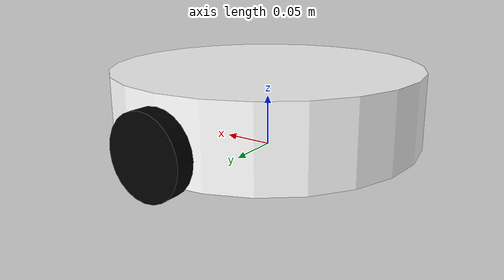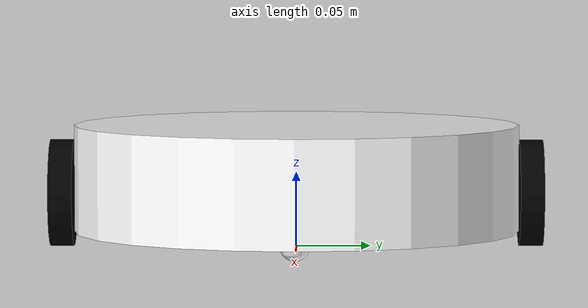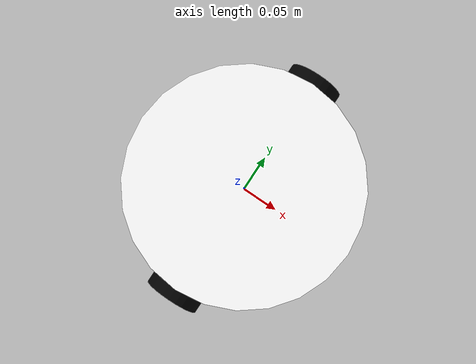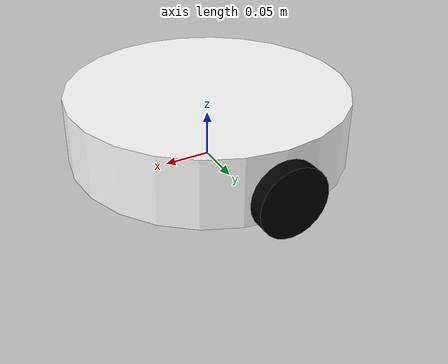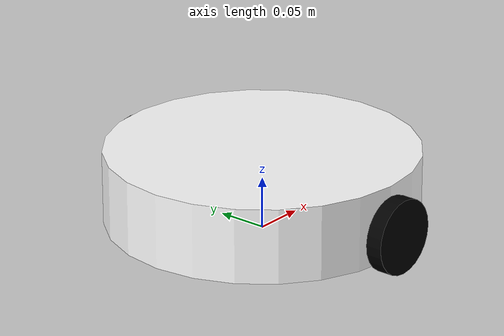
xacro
<robot name="diff">

    <link name="base_link"/>

    <link name="body_link">
      <visual>
        <geometry>
          <cylinder radius="0.15" length="0.072"/>
        </geometry>
        <origin xyz="0 0 0" rpy="0 0 0"/>
        <material name="white">
          <color rgba="1.0 1.0 1.0 1.0"/>
        </material>
      </visual>
      <collision>
        <geometry>
          <cylinder radius="0.15" length="0.072"/>
        </geometry>
        <origin xyz="0 0 0" rpy="0 0 0"/>
      </collision>
      <inertial>
          <origin xyz="0 0 0" rpy="0 0 0" />
          <mass value="3.0" />
          <inertia ixx="0.018171"
              ixy="0"  ixz="0"
              iyx="0"  iyy="0.018171"
              iyz="0"
              izx="0"  izy="0"  izz="0.03375" />
      </inertial>
    </link>

    <gazebo reference="body_link">
      <material>Gazebo/White</material>
    </gazebo>

    <link name="ball_link_front">
      <visual>
        <geometry>
          <sphere radius="0.01"/>
        </geometry>
        <origin xyz="0 0 0" rpy="0 0 0"/>
        <material name="white">
          <color rgba="1.0 1.0 1.0 1.0"/>
        </material>
      </visual>
      <collision>
        <geometry>
          <sphere radius="0.01"/>
        </geometry>
        <origin xyz="0 0 0" rpy="0 0 0"/>
      </collision>
      <inertial>
          <origin xyz="0 0 0" rpy="0 0 0" />
          <mass value="0.05" />
          <inertia ixx="0.000002"
              ixy="0"  ixz="0"
              iyx="0"  iyy="0.000002"
              iyz="0"
              izx="0"  izy="0"  izz="0.000002" />
      </inertial>
    </link>

    <gazebo reference="ball_link_front">
      <material>Gazebo/White</material>
      <mu1 value="0.1" />
      <mu2 value="0.1" />
    </gazebo>

    <link name="ball_link_back">
      <visual>
        <geometry>
          <sphere radius="0.01"/>
        </geometry>
        <origin xyz="0 0 0" rpy="0 0 0"/>
        <material name="white">
          <color rgba="1.0 1.0 1.0 1.0"/>
        </material>
      </visual>
      <collision>
        <geometry>
          <sphere radius="0.01"/>
        </geometry>
        <origin xyz="0 0 0" rpy="0 0 0"/>
      </collision>
      <inertial>
          <origin xyz="0 0 0" rpy="0 0 0" />
          <mass value="0.05" />
          <inertia ixx="0.000002"
              ixy="0"  ixz="0"
              iyx="0"  iyy="0.000002"
              iyz="0"
              izx="0"  izy="0"  izz="0.000002" />
      </inertial>
    </link>

    <gazebo reference="ball_link_back">
      <material>Gazebo/White</material>
      <mu1 value="0.1" />
      <mu2 value="0.1" />
    </gazebo>

    <link name="wheel_link_right">
      <visual>
        <geometry>
          <cylinder radius="0.036" length="0.016"/>
        </geometry>
        <origin xyz="0 0 0" rpy="0 0 0"/>
        <material name="black">
          <color rgba="0.0 0.0 0.0 1.0"/>
        </material>
      </visual>
      <collision>
        <geometry>
          <cylinder radius="0.036" length="0.016"/>
        </geometry>
        <origin xyz="0 0 0" rpy="0 0 0"/>
      </collision>
      <inertial>
          <origin xyz="0 0 0" rpy="0 0 0" />
          <mass value="0.1" />
          <inertia ixx="0.000034533333"
              ixy="0"  ixz="0"
              iyx="0"  iyy="0.000034533333"
              iyz="0"
              izx="0"  izy="0"  izz="0.0000648" />
      </inertial>
    </link>

    <gazebo reference="wheel_link_right">
      <material>Gazebo/Black</material>
      <mu1 value="1.0" />
      <mu2 value="1.0" />
    </gazebo>

    <link name="wheel_link_left">
      <visual>
        <geometry>
          <cylinder radius="0.036" length="0.016"/>
        </geometry>
        <origin xyz="0 0 0" rpy="0 0 0"/>
        <material name="black">
          <color rgba="0.0 0.0 0.0 1.0"/>
        </material>
      </visual>
      <collision>
        <geometry>
          <cylinder radius="0.036" length="0.016"/>
        </geometry>
        <origin xyz="0 0 0" rpy="0 0 0"/>
      </collision>
      <inertial>
          <origin xyz="0 0 0" rpy="0 0 0" />
          <mass value="0.1" />
          <inertia ixx="0.000034533333"
              ixy="0"  ixz="0"
              iyx="0"  iyy="0.000034533333"
              iyz="0"
              izx="0"  izy="0"  izz="0.0000648" />
      </inertial>
    </link>

    <gazebo reference="wheel_link_left">
      <material>Gazebo/Black</material>
      <mu1 value="1.0" />
      <mu2 value="1.0" />
    </gazebo>

    <joint name="body_joint" type="fixed">
      <parent link="base_link"/>
      <child  link="body_link"/>
      <origin xyz="0 0 0.046" rpy="0 0 0" />
    </joint>

    <joint name="ball_joint_front" type="fixed">
      <parent link="body_link"/>
      <child  link="ball_link_front"/>
      <origin xyz="0.11 0 -0.036" rpy="0 0 0" />
    </joint>

    <joint name="ball_joint_back" type="fixed">
      <parent link="body_link"/>
      <child  link="ball_link_back"/>
      <origin xyz="-0.11 0 -0.036" rpy="0 0 0" />
    </joint>

    <joint name="wheel_joint_right" type="continuous">
      <parent link="body_link"/>
      <child  link="wheel_link_right"/>
      <origin xyz="0 -0.158 -0.01" rpy="1.570796326794897 0 0" />
      <axis xyz="0 0 -1" />
      <limit effort="10" velocity="10" />
      <joint_properties damping="0.0" friction="0.0" />
    </joint>

    <joint name="wheel_joint_left" type="continuous">
      <parent link="body_link"/>
      <child  link="wheel_link_left"/>
      <origin xyz="0 0.158 -0.01" rpy="1.570796326794897 0 0" />
      <axis xyz="0 0 -1" />
      <limit effort="10" velocity="10" />
      <joint_properties damping="0.0" friction="0.0" />
    </joint>

    <gazebo>
      <plugin name="differential_drive_controller" filename="libgazebo_ros_diff_drive.so">

        <!-- Plugin update rate in Hz, defaults to 100 Hz -->
        <updateRate>30</updateRate>

        <!-- Name of left joint, defaults to `left_joint` -->
        <leftJoint>wheel_joint_left</leftJoint>

        <!-- Name of right joint, defaults to `right_joint` -->
        <rightJoint>wheel_joint_right</rightJoint>

        <!-- The distance from the center of one wheel to the other, in meters, defaults to 0.34 m -->
        <wheelSeparation>0.332</wheelSeparation>

        <!-- Diameter of the wheels, in meters, defaults to 0.15 m -->
        <wheelDiameter>0.072</wheelDiameter>

        <!-- Wheel acceleration, in rad/s^2, defaults to 0.0 rad/s^2 -->
        <wheelAcceleration>1.0</wheelAcceleration>

        <!-- Maximum torque which the wheels can produce, in Nm, defaults to 5 Nm -->
        <wheelTorque>10</wheelTorque>

        <!-- Topic to receive geometry_msgs/Twist message commands, defaults to `cmd_vel` -->
        <commandTopic>cmd_vel</commandTopic>

        <!-- Topic to publish nav_msgs/Odometry messages, defaults to `odom` -->
        <odometryTopic>odom</odometryTopic>

        <!-- Odometry frame, defaults to `odom` -->
        <odometryFrame>odom</odometryFrame>

        <!-- Robot frame to calculate odometry from, defaults to `base_footprint` -->
        <robotBaseFrame>base_link</robotBaseFrame>

        <!-- Odometry source, encoder or world, defaults to world -->
        <odometrySource>world</odometrySource>

        <!-- Set to 1 to create odom publisher, defaults to 1 -->
        <publishTf>1</publishTf>

        <!-- Set to true to publish transforms for the wheel links, defaults to false -->
        <publishWheelTF>false</publishWheelTF>

        <!-- Set to true to publish transforms for the odometry, defaults to true -->
        <publishOdomTF>true</publishOdomTF>

        <!-- Set to true to publish sensor_msgs/JointState on /joint_states for the wheel joints, defaults to false -->
        <publishWheelJointState>false</publishWheelJointState>

        <!-- Set to true to swap right and left wheels, defaults to true -->
        <legacyMode>false</legacyMode>

        <!-- DebugMode or not, na or Debug, defaults to na -->
        <rosDebugLevel>na</rosDebugLevel>
      </plugin>
    </gazebo>

  </robot>
